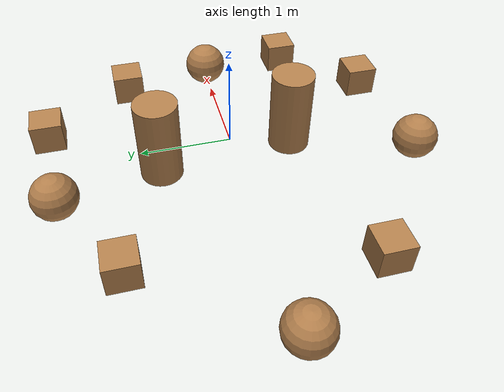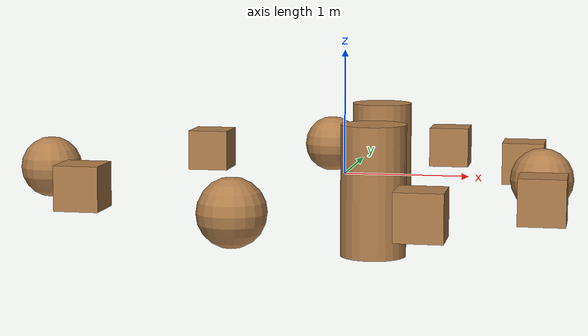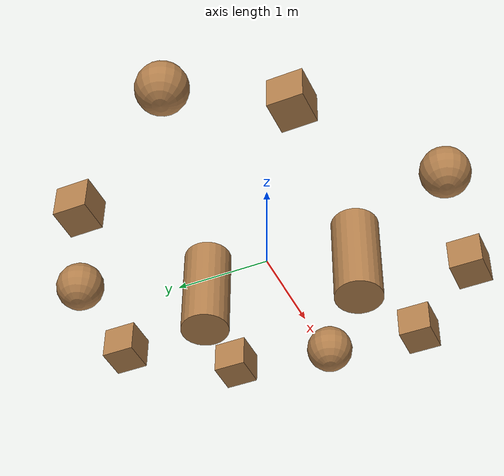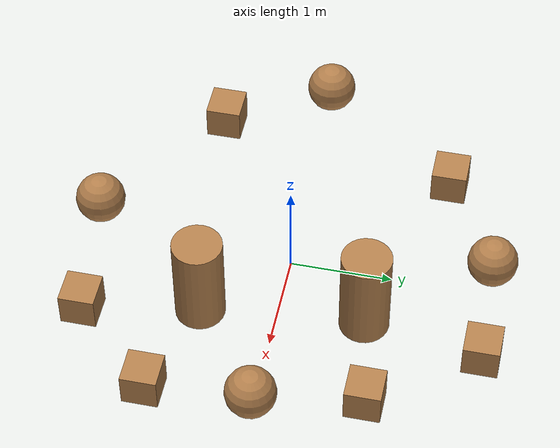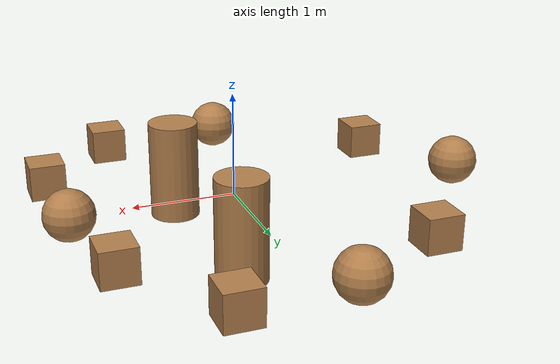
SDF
<?xml version='1.0'?>
<sdf version='1.7'>
  <model name='stage2_obs'>
    <link name='link_0'>
      <inertial>
        <mass>1</mass>
        <inertia>
          <ixx>0.145833</ixx>
          <ixy>0</ixy>
          <ixz>0</ixz>
          <iyy>0.145833</iyy>
          <iyz>0</iyz>
          <izz>0.125</izz>
        </inertia>
        <pose>0 0 0 0 -0 0</pose>
      </inertial>
      <pose>0.358291 -0.842463 0 0 -0 0</pose>
      <gravity>1</gravity>
      <self_collide>0</self_collide>
      <kinematic>0</kinematic>
      <enable_wind>0</enable_wind>
      <visual name='visual'>
        <pose>0 0 0 0 -0 0</pose>
        <geometry>
          <cylinder>
            <radius>0.25</radius>
            <length>1</length>
          </cylinder>
        </geometry>
        <material>
          <lighting>1</lighting>
          <script>
            <uri>file://media/materials/scripts/gazebo.material</uri>
            <name>Gazebo/Wood</name>
          </script>
          <shader type='pixel'>
            <normal_map>__default__</normal_map>
          </shader>
          <ambient>0.3 0.3 0.3 1</ambient>
          <diffuse>0.7 0.7 0.7 1</diffuse>
          <specular>0.01 0.01 0.01 1</specular>
          <emissive>0 0 0 1</emissive>
        </material>
        <transparency>0</transparency>
        <cast_shadows>1</cast_shadows>
      </visual>
      <collision name='collision'>
        <laser_retro>0</laser_retro>
        <max_contacts>10</max_contacts>
        <pose>0 0 0 0 -0 0</pose>
        <geometry>
          <cylinder>
            <radius>0.25</radius>
            <length>1</length>
          </cylinder>
        </geometry>
        <surface>
          <friction>
            <ode>
              <mu>1</mu>
              <mu2>1</mu2>
              <fdir1>0 0 0</fdir1>
              <slip1>0</slip1>
              <slip2>0</slip2>
            </ode>
            <torsional>
              <coefficient>1</coefficient>
              <patch_radius>0</patch_radius>
              <surface_radius>0</surface_radius>
              <use_patch_radius>1</use_patch_radius>
              <ode>
                <slip>0</slip>
              </ode>
            </torsional>
          </friction>
          <bounce>
            <restitution_coefficient>0</restitution_coefficient>
            <threshold>1e+06</threshold>
          </bounce>
          <contact>
            <collide_without_contact>0</collide_without_contact>
            <collide_without_contact_bitmask>1</collide_without_contact_bitmask>
            <collide_bitmask>1</collide_bitmask>
            <ode>
              <soft_cfm>0</soft_cfm>
              <soft_erp>0.2</soft_erp>
              <kp>1e+13</kp>
              <kd>1</kd>
              <max_vel>0.01</max_vel>
              <min_depth>0</min_depth>
            </ode>
            <bullet>
              <split_impulse>1</split_impulse>
              <split_impulse_penetration_threshold>-0.01</split_impulse_penetration_threshold>
              <soft_cfm>0</soft_cfm>
              <soft_erp>0.2</soft_erp>
              <kp>1e+13</kp>
              <kd>1</kd>
            </bullet>
          </contact>
        </surface>
      </collision>
    </link>
    <link name='link_0_clone_0'>
      <inertial>
        <mass>1</mass>
        <inertia>
          <ixx>0.145833</ixx>
          <ixy>0</ixy>
          <ixz>0</ixz>
          <iyy>0.145833</iyy>
          <iyz>0</iyz>
          <izz>0.125</izz>
        </inertia>
        <pose>0 0 0 0 -0 0</pose>
      </inertial>
      <pose>0.192563 0.776958 0 0 -0 0</pose>
      <gravity>1</gravity>
      <self_collide>0</self_collide>
      <kinematic>0</kinematic>
      <enable_wind>0</enable_wind>
      <visual name='visual'>
        <pose>0 0 0 0 -0 0</pose>
        <geometry>
          <cylinder>
            <radius>0.25</radius>
            <length>1</length>
          </cylinder>
        </geometry>
        <material>
          <lighting>1</lighting>
          <script>
            <uri>file://media/materials/scripts/gazebo.material</uri>
            <name>Gazebo/Wood</name>
          </script>
          <shader type='pixel'>
            <normal_map>__default__</normal_map>
          </shader>
          <ambient>0.3 0.3 0.3 1</ambient>
          <diffuse>0.7 0.7 0.7 1</diffuse>
          <specular>0.01 0.01 0.01 1</specular>
          <emissive>0 0 0 1</emissive>
        </material>
        <transparency>0</transparency>
        <cast_shadows>1</cast_shadows>
      </visual>
      <collision name='collision'>
        <laser_retro>0</laser_retro>
        <max_contacts>10</max_contacts>
        <pose>0 0 0 0 -0 0</pose>
        <geometry>
          <cylinder>
            <radius>0.25</radius>
            <length>1</length>
          </cylinder>
        </geometry>
        <surface>
          <friction>
            <ode>
              <mu>1</mu>
              <mu2>1</mu2>
              <fdir1>0 0 0</fdir1>
              <slip1>0</slip1>
              <slip2>0</slip2>
            </ode>
            <torsional>
              <coefficient>1</coefficient>
              <patch_radius>0</patch_radius>
              <surface_radius>0</surface_radius>
              <use_patch_radius>1</use_patch_radius>
              <ode>
                <slip>0</slip>
              </ode>
            </torsional>
          </friction>
          <bounce>
            <restitution_coefficient>0</restitution_coefficient>
            <threshold>1e+06</threshold>
          </bounce>
          <contact>
            <collide_without_contact>0</collide_without_contact>
            <collide_without_contact_bitmask>1</collide_without_contact_bitmask>
            <collide_bitmask>1</collide_bitmask>
            <ode>
              <soft_cfm>0</soft_cfm>
              <soft_erp>0.2</soft_erp>
              <kp>1e+13</kp>
              <kd>1</kd>
              <max_vel>0.01</max_vel>
              <min_depth>0</min_depth>
            </ode>
            <bullet>
              <split_impulse>1</split_impulse>
              <split_impulse_penetration_threshold>-0.01</split_impulse_penetration_threshold>
              <soft_cfm>0</soft_cfm>
              <soft_erp>0.2</soft_erp>
              <kp>1e+13</kp>
              <kd>1</kd>
            </bullet>
          </contact>
        </surface>
      </collision>
    </link>
    <link name='link_1_clone_clone'>
      <inertial>
        <mass>1</mass>
        <inertia>
          <ixx>0.166667</ixx>
          <ixy>0</ixy>
          <ixz>0</ixz>
          <iyy>0.166667</iyy>
          <iyz>0</iyz>
          <izz>0.166667</izz>
        </inertia>
        <pose>0 0 0 0 -0 0</pose>
      </inertial>
      <pose>0.841279 -1.88419 0 0 -0 0</pose>
      <gravity>1</gravity>
      <self_collide>0</self_collide>
      <kinematic>0</kinematic>
      <enable_wind>0</enable_wind>
      <visual name='visual'>
        <pose>0 0 0 0 -0 0</pose>
        <geometry>
          <box>
            <size>0.35 0.35 0.35</size>
          </box>
        </geometry>
        <material>
          <lighting>1</lighting>
          <script>
            <uri>file://media/materials/scripts/gazebo.material</uri>
            <name>Gazebo/Wood</name>
          </script>
          <shader type='pixel'>
            <normal_map>__default__</normal_map>
          </shader>
          <ambient>0.3 0.3 0.3 1</ambient>
          <diffuse>0.7 0.7 0.7 1</diffuse>
          <specular>0.01 0.01 0.01 1</specular>
          <emissive>0 0 0 1</emissive>
        </material>
        <transparency>0</transparency>
        <cast_shadows>1</cast_shadows>
      </visual>
      <collision name='collision'>
        <laser_retro>0</laser_retro>
        <max_contacts>10</max_contacts>
        <pose>0 0 0 0 -0 0</pose>
        <geometry>
          <box>
            <size>0.35 0.35 0.35</size>
          </box>
        </geometry>
        <surface>
          <friction>
            <ode>
              <mu>1</mu>
              <mu2>1</mu2>
              <fdir1>0 0 0</fdir1>
              <slip1>0</slip1>
              <slip2>0</slip2>
            </ode>
            <torsional>
              <coefficient>1</coefficient>
              <patch_radius>0</patch_radius>
              <surface_radius>0</surface_radius>
              <use_patch_radius>1</use_patch_radius>
              <ode>
                <slip>0</slip>
              </ode>
            </torsional>
          </friction>
          <bounce>
            <restitution_coefficient>0</restitution_coefficient>
            <threshold>1e+06</threshold>
          </bounce>
          <contact>
            <collide_without_contact>0</collide_without_contact>
            <collide_without_contact_bitmask>1</collide_without_contact_bitmask>
            <collide_bitmask>1</collide_bitmask>
            <ode>
              <soft_cfm>0</soft_cfm>
              <soft_erp>0.2</soft_erp>
              <kp>1e+13</kp>
              <kd>1</kd>
              <max_vel>0.01</max_vel>
              <min_depth>0</min_depth>
            </ode>
            <bullet>
              <split_impulse>1</split_impulse>
              <split_impulse_penetration_threshold>-0.01</split_impulse_penetration_threshold>
              <soft_cfm>0</soft_cfm>
              <soft_erp>0.2</soft_erp>
              <kp>1e+13</kp>
              <kd>1</kd>
            </bullet>
          </contact>
        </surface>
      </collision>
    </link>
    <link name='link_1_clone_clone_clone'>
      <inertial>
        <mass>1</mass>
        <inertia>
          <ixx>0.166667</ixx>
          <ixy>0</ixy>
          <ixz>0</ixz>
          <iyy>0.166667</iyy>
          <iyz>0</iyz>
          <izz>0.166667</izz>
        </inertia>
        <pose>0 0 0 0 -0 0</pose>
      </inertial>
      <pose>1.38108 0.990034 0 0 -0 0</pose>
      <gravity>1</gravity>
      <self_collide>0</self_collide>
      <kinematic>0</kinematic>
      <enable_wind>0</enable_wind>
      <visual name='visual'>
        <pose>0 0 0 0 -0 0</pose>
        <geometry>
          <box>
            <size>0.35 0.35 0.35</size>
          </box>
        </geometry>
        <material>
          <lighting>1</lighting>
          <script>
            <uri>file://media/materials/scripts/gazebo.material</uri>
            <name>Gazebo/Wood</name>
          </script>
          <shader type='pixel'>
            <normal_map>__default__</normal_map>
          </shader>
          <ambient>0.3 0.3 0.3 1</ambient>
          <diffuse>0.7 0.7 0.7 1</diffuse>
          <specular>0.01 0.01 0.01 1</specular>
          <emissive>0 0 0 1</emissive>
        </material>
        <transparency>0</transparency>
        <cast_shadows>1</cast_shadows>
      </visual>
      <collision name='collision'>
        <laser_retro>0</laser_retro>
        <max_contacts>10</max_contacts>
        <pose>0 0 0 0 -0 0</pose>
        <geometry>
          <box>
            <size>0.35 0.35 0.35</size>
          </box>
        </geometry>
        <surface>
          <friction>
            <ode>
              <mu>1</mu>
              <mu2>1</mu2>
              <fdir1>0 0 0</fdir1>
              <slip1>0</slip1>
              <slip2>0</slip2>
            </ode>
            <torsional>
              <coefficient>1</coefficient>
              <patch_radius>0</patch_radius>
              <surface_radius>0</surface_radius>
              <use_patch_radius>1</use_patch_radius>
              <ode>
                <slip>0</slip>
              </ode>
            </torsional>
          </friction>
          <bounce>
            <restitution_coefficient>0</restitution_coefficient>
            <threshold>1e+06</threshold>
          </bounce>
          <contact>
            <collide_without_contact>0</collide_without_contact>
            <collide_without_contact_bitmask>1</collide_without_contact_bitmask>
            <collide_bitmask>1</collide_bitmask>
            <ode>
              <soft_cfm>0</soft_cfm>
              <soft_erp>0.2</soft_erp>
              <kp>1e+13</kp>
              <kd>1</kd>
              <max_vel>0.01</max_vel>
              <min_depth>0</min_depth>
            </ode>
            <bullet>
              <split_impulse>1</split_impulse>
              <split_impulse_penetration_threshold>-0.01</split_impulse_penetration_threshold>
              <soft_cfm>0</soft_cfm>
              <soft_erp>0.2</soft_erp>
              <kp>1e+13</kp>
              <kd>1</kd>
            </bullet>
          </contact>
        </surface>
      </collision>
    </link>
    <link name='link_1_clone_clone_clone_0'>
      <inertial>
        <mass>1</mass>
        <inertia>
          <ixx>0.166667</ixx>
          <ixy>0</ixy>
          <ixz>0</ixz>
          <iyy>0.166667</iyy>
          <iyz>0</iyz>
          <izz>0.166667</izz>
        </inertia>
        <pose>0 0 0 0 -0 0</pose>
      </inertial>
      <pose>1.63204 -1.06501 0 0 -0 0</pose>
      <gravity>1</gravity>
      <self_collide>0</self_collide>
      <kinematic>0</kinematic>
      <enable_wind>0</enable_wind>
      <visual name='visual'>
        <pose>0 0 0 0 -0 0</pose>
        <geometry>
          <box>
            <size>0.35 0.35 0.35</size>
          </box>
        </geometry>
        <material>
          <lighting>1</lighting>
          <script>
            <uri>file://media/materials/scripts/gazebo.material</uri>
            <name>Gazebo/Wood</name>
          </script>
          <shader type='pixel'>
            <normal_map>__default__</normal_map>
          </shader>
          <ambient>0.3 0.3 0.3 1</ambient>
          <diffuse>0.7 0.7 0.7 1</diffuse>
          <specular>0.01 0.01 0.01 1</specular>
          <emissive>0 0 0 1</emissive>
        </material>
        <transparency>0</transparency>
        <cast_shadows>1</cast_shadows>
      </visual>
      <collision name='collision'>
        <laser_retro>0</laser_retro>
        <max_contacts>10</max_contacts>
        <pose>0 0 0 0 -0 0</pose>
        <geometry>
          <box>
            <size>0.35 0.35 0.35</size>
          </box>
        </geometry>
        <surface>
          <friction>
            <ode>
              <mu>1</mu>
              <mu2>1</mu2>
              <fdir1>0 0 0</fdir1>
              <slip1>0</slip1>
              <slip2>0</slip2>
            </ode>
            <torsional>
              <coefficient>1</coefficient>
              <patch_radius>0</patch_radius>
              <surface_radius>0</surface_radius>
              <use_patch_radius>1</use_patch_radius>
              <ode>
                <slip>0</slip>
              </ode>
            </torsional>
          </friction>
          <bounce>
            <restitution_coefficient>0</restitution_coefficient>
            <threshold>1e+06</threshold>
          </bounce>
          <contact>
            <collide_without_contact>0</collide_without_contact>
            <collide_without_contact_bitmask>1</collide_without_contact_bitmask>
            <collide_bitmask>1</collide_bitmask>
            <ode>
              <soft_cfm>0</soft_cfm>
              <soft_erp>0.2</soft_erp>
              <kp>1e+13</kp>
              <kd>1</kd>
              <max_vel>0.01</max_vel>
              <min_depth>0</min_depth>
            </ode>
            <bullet>
              <split_impulse>1</split_impulse>
              <split_impulse_penetration_threshold>-0.01</split_impulse_penetration_threshold>
              <soft_cfm>0</soft_cfm>
              <soft_erp>0.2</soft_erp>
              <kp>1e+13</kp>
              <kd>1</kd>
            </bullet>
          </contact>
        </surface>
      </collision>
    </link>
    <link name='link_1_clone_clone_clone_1'>
      <inertial>
        <mass>1</mass>
        <inertia>
          <ixx>0.166667</ixx>
          <ixy>0</ixy>
          <ixz>0</ixz>
          <iyy>0.166667</iyy>
          <iyz>0</iyz>
          <izz>0.166667</izz>
        </inertia>
        <pose>0 0 0 0 -0 0</pose>
      </inertial>
      <pose>0.656609 1.98442 0 0 -0 0</pose>
      <gravity>1</gravity>
      <self_collide>0</self_collide>
      <kinematic>0</kinematic>
      <enable_wind>0</enable_wind>
      <visual name='visual'>
        <pose>0 0 0 0 -0 0</pose>
        <geometry>
          <box>
            <size>0.35 0.35 0.35</size>
          </box>
        </geometry>
        <material>
          <lighting>1</lighting>
          <script>
            <uri>file://media/materials/scripts/gazebo.material</uri>
            <name>Gazebo/Wood</name>
          </script>
          <shader type='pixel'>
            <normal_map>__default__</normal_map>
          </shader>
          <ambient>0.3 0.3 0.3 1</ambient>
          <diffuse>0.7 0.7 0.7 1</diffuse>
          <specular>0.01 0.01 0.01 1</specular>
          <emissive>0 0 0 1</emissive>
        </material>
        <transparency>0</transparency>
        <cast_shadows>1</cast_shadows>
      </visual>
      <collision name='collision'>
        <laser_retro>0</laser_retro>
        <max_contacts>10</max_contacts>
        <pose>0 0 0 0 -0 0</pose>
        <geometry>
          <box>
            <size>0.35 0.35 0.35</size>
          </box>
        </geometry>
        <surface>
          <friction>
            <ode>
              <mu>1</mu>
              <mu2>1</mu2>
              <fdir1>0 0 0</fdir1>
              <slip1>0</slip1>
              <slip2>0</slip2>
            </ode>
            <torsional>
              <coefficient>1</coefficient>
              <patch_radius>0</patch_radius>
              <surface_radius>0</surface_radius>
              <use_patch_radius>1</use_patch_radius>
              <ode>
                <slip>0</slip>
              </ode>
            </torsional>
          </friction>
          <bounce>
            <restitution_coefficient>0</restitution_coefficient>
            <threshold>1e+06</threshold>
          </bounce>
          <contact>
            <collide_without_contact>0</collide_without_contact>
            <collide_without_contact_bitmask>1</collide_without_contact_bitmask>
            <collide_bitmask>1</collide_bitmask>
            <ode>
              <soft_cfm>0</soft_cfm>
              <soft_erp>0.2</soft_erp>
              <kp>1e+13</kp>
              <kd>1</kd>
              <max_vel>0.01</max_vel>
              <min_depth>0</min_depth>
            </ode>
            <bullet>
              <split_impulse>1</split_impulse>
              <split_impulse_penetration_threshold>-0.01</split_impulse_penetration_threshold>
              <soft_cfm>0</soft_cfm>
              <soft_erp>0.2</soft_erp>
              <kp>1e+13</kp>
              <kd>1</kd>
            </bullet>
          </contact>
        </surface>
      </collision>
    </link>
    <link name='link_1_clone_clone_clone_2'>
      <inertial>
        <mass>1</mass>
        <inertia>
          <ixx>0.166667</ixx>
          <ixy>0</ixy>
          <ixz>0</ixz>
          <iyy>0.166667</iyy>
          <iyz>0</iyz>
          <izz>0.166667</izz>
        </inertia>
        <pose>0 0 0 0 -0 0</pose>
      </inertial>
      <pose>-1.85776 -1.07448 0 0 -0 0</pose>
      <gravity>1</gravity>
      <self_collide>0</self_collide>
      <kinematic>0</kinematic>
      <enable_wind>0</enable_wind>
      <visual name='visual'>
        <pose>0 0 0 0 -0 0</pose>
        <geometry>
          <box>
            <size>0.35 0.35 0.35</size>
          </box>
        </geometry>
        <material>
          <lighting>1</lighting>
          <script>
            <uri>file://media/materials/scripts/gazebo.material</uri>
            <name>Gazebo/Wood</name>
          </script>
          <shader type='pixel'>
            <normal_map>__default__</normal_map>
          </shader>
          <ambient>0.3 0.3 0.3 1</ambient>
          <diffuse>0.7 0.7 0.7 1</diffuse>
          <specular>0.01 0.01 0.01 1</specular>
          <emissive>0 0 0 1</emissive>
        </material>
        <transparency>0</transparency>
        <cast_shadows>1</cast_shadows>
      </visual>
      <collision name='collision'>
        <laser_retro>0</laser_retro>
        <max_contacts>10</max_contacts>
        <pose>0 0 0 0 -0 0</pose>
        <geometry>
          <box>
            <size>0.35 0.35 0.35</size>
          </box>
        </geometry>
        <surface>
          <friction>
            <ode>
              <mu>1</mu>
              <mu2>1</mu2>
              <fdir1>0 0 0</fdir1>
              <slip1>0</slip1>
              <slip2>0</slip2>
            </ode>
            <torsional>
              <coefficient>1</coefficient>
              <patch_radius>0</patch_radius>
              <surface_radius>0</surface_radius>
              <use_patch_radius>1</use_patch_radius>
              <ode>
                <slip>0</slip>
              </ode>
            </torsional>
          </friction>
          <bounce>
            <restitution_coefficient>0</restitution_coefficient>
            <threshold>1e+06</threshold>
          </bounce>
          <contact>
            <collide_without_contact>0</collide_without_contact>
            <collide_without_contact_bitmask>1</collide_without_contact_bitmask>
            <collide_bitmask>1</collide_bitmask>
            <ode>
              <soft_cfm>0</soft_cfm>
              <soft_erp>0.2</soft_erp>
              <kp>1e+13</kp>
              <kd>1</kd>
              <max_vel>0.01</max_vel>
              <min_depth>0</min_depth>
            </ode>
            <bullet>
              <split_impulse>1</split_impulse>
              <split_impulse_penetration_threshold>-0.01</split_impulse_penetration_threshold>
              <soft_cfm>0</soft_cfm>
              <soft_erp>0.2</soft_erp>
              <kp>1e+13</kp>
              <kd>1</kd>
            </bullet>
          </contact>
        </surface>
      </collision>
    </link>
    <link name='link_1_clone_clone_clone_3'>
      <inertial>
        <mass>1</mass>
        <inertia>
          <ixx>0.166667</ixx>
          <ixy>0</ixy>
          <ixz>0</ixz>
          <iyy>0.166667</iyy>
          <iyz>0</iyz>
          <izz>0.166667</izz>
        </inertia>
        <pose>0 0 0 0 -0 0</pose>
      </inertial>
      <pose>-1.44106 1.35938 0 0 -0 0</pose>
      <gravity>1</gravity>
      <self_collide>0</self_collide>
      <kinematic>0</kinematic>
      <enable_wind>0</enable_wind>
      <visual name='visual'>
        <pose>0 0 0 0 -0 0</pose>
        <geometry>
          <box>
            <size>0.35 0.35 0.35</size>
          </box>
        </geometry>
        <material>
          <lighting>1</lighting>
          <script>
            <uri>file://media/materials/scripts/gazebo.material</uri>
            <name>Gazebo/Wood</name>
          </script>
          <shader type='pixel'>
            <normal_map>__default__</normal_map>
          </shader>
          <ambient>0.3 0.3 0.3 1</ambient>
          <diffuse>0.7 0.7 0.7 1</diffuse>
          <specular>0.01 0.01 0.01 1</specular>
          <emissive>0 0 0 1</emissive>
        </material>
        <transparency>0</transparency>
        <cast_shadows>1</cast_shadows>
      </visual>
      <collision name='collision'>
        <laser_retro>0</laser_retro>
        <max_contacts>10</max_contacts>
        <pose>0 0 0 0 -0 0</pose>
        <geometry>
          <box>
            <size>0.35 0.35 0.35</size>
          </box>
        </geometry>
        <surface>
          <friction>
            <ode>
              <mu>1</mu>
              <mu2>1</mu2>
              <fdir1>0 0 0</fdir1>
              <slip1>0</slip1>
              <slip2>0</slip2>
            </ode>
            <torsional>
              <coefficient>1</coefficient>
              <patch_radius>0</patch_radius>
              <surface_radius>0</surface_radius>
              <use_patch_radius>1</use_patch_radius>
              <ode>
                <slip>0</slip>
              </ode>
            </torsional>
          </friction>
          <bounce>
            <restitution_coefficient>0</restitution_coefficient>
            <threshold>1e+06</threshold>
          </bounce>
          <contact>
            <collide_without_contact>0</collide_without_contact>
            <collide_without_contact_bitmask>1</collide_without_contact_bitmask>
            <collide_bitmask>1</collide_bitmask>
            <ode>
              <soft_cfm>0</soft_cfm>
              <soft_erp>0.2</soft_erp>
              <kp>1e+13</kp>
              <kd>1</kd>
              <max_vel>0.01</max_vel>
              <min_depth>0</min_depth>
            </ode>
            <bullet>
              <split_impulse>1</split_impulse>
              <split_impulse_penetration_threshold>-0.01</split_impulse_penetration_threshold>
              <soft_cfm>0</soft_cfm>
              <soft_erp>0.2</soft_erp>
              <kp>1e+13</kp>
              <kd>1</kd>
            </bullet>
          </contact>
        </surface>
      </collision>
    </link>
    <link name='link_2'>
      <inertial>
        <mass>1</mass>
        <inertia>
          <ixx>0.1</ixx>
          <ixy>0</ixy>
          <ixz>0</ixz>
          <iyy>0.1</iyy>
          <iyz>0</iyz>
          <izz>0.1</izz>
        </inertia>
        <pose>0 0 0 0 -0 0</pose>
      </inertial>
      <pose>-2.45911 -0.070631 0 0 -0 0</pose>
      <gravity>1</gravity>
      <self_collide>0</self_collide>
      <kinematic>0</kinematic>
      <enable_wind>0</enable_wind>
      <visual name='visual'>
        <pose>0 0 0 0 -0 0</pose>
        <geometry>
          <sphere>
            <radius>0.25</radius>
          </sphere>
        </geometry>
        <material>
          <lighting>1</lighting>
          <script>
            <uri>file://media/materials/scripts/gazebo.material</uri>
            <name>Gazebo/Wood</name>
          </script>
          <shader type='pixel'>
            <normal_map>__default__</normal_map>
          </shader>
          <ambient>0.3 0.3 0.3 1</ambient>
          <diffuse>0.7 0.7 0.7 1</diffuse>
          <specular>0.01 0.01 0.01 1</specular>
          <emissive>0 0 0 1</emissive>
        </material>
        <transparency>0</transparency>
        <cast_shadows>1</cast_shadows>
      </visual>
      <collision name='collision'>
        <laser_retro>0</laser_retro>
        <max_contacts>10</max_contacts>
        <pose>0 0 0 0 -0 0</pose>
        <geometry>
          <sphere>
            <radius>0.25</radius>
          </sphere>
        </geometry>
        <surface>
          <friction>
            <ode>
              <mu>1</mu>
              <mu2>1</mu2>
              <fdir1>0 0 0</fdir1>
              <slip1>0</slip1>
              <slip2>0</slip2>
            </ode>
            <torsional>
              <coefficient>1</coefficient>
              <patch_radius>0</patch_radius>
              <surface_radius>0</surface_radius>
              <use_patch_radius>1</use_patch_radius>
              <ode>
                <slip>0</slip>
              </ode>
            </torsional>
          </friction>
          <bounce>
            <restitution_coefficient>0</restitution_coefficient>
            <threshold>1e+06</threshold>
          </bounce>
          <contact>
            <collide_without_contact>0</collide_without_contact>
            <collide_without_contact_bitmask>1</collide_without_contact_bitmask>
            <collide_bitmask>1</collide_bitmask>
            <ode>
              <soft_cfm>0</soft_cfm>
              <soft_erp>0.2</soft_erp>
              <kp>1e+13</kp>
              <kd>1</kd>
              <max_vel>0.01</max_vel>
              <min_depth>0</min_depth>
            </ode>
            <bullet>
              <split_impulse>1</split_impulse>
              <split_impulse_penetration_threshold>-0.01</split_impulse_penetration_threshold>
              <soft_cfm>0</soft_cfm>
              <soft_erp>0.2</soft_erp>
              <kp>1e+13</kp>
              <kd>1</kd>
            </bullet>
          </contact>
        </surface>
      </collision>
    </link>
    <link name='link_2_clone'>
      <inertial>
        <mass>1</mass>
        <inertia>
          <ixx>0.1</ixx>
          <ixy>0</ixy>
          <ixz>0</ixz>
          <iyy>0.1</iyy>
          <iyz>0</iyz>
          <izz>0.1</izz>
        </inertia>
        <pose>0 0 0 0 -0 0</pose>
      </inertial>
      <pose>-0.451416 -2.05466 0 0 -0 0</pose>
      <gravity>1</gravity>
      <self_collide>0</self_collide>
      <kinematic>0</kinematic>
      <enable_wind>0</enable_wind>
      <visual name='visual'>
        <pose>0 0 0 0 -0 0</pose>
        <geometry>
          <sphere>
            <radius>0.25</radius>
          </sphere>
        </geometry>
        <material>
          <lighting>1</lighting>
          <script>
            <uri>file://media/materials/scripts/gazebo.material</uri>
            <name>Gazebo/Wood</name>
          </script>
          <shader type='pixel'>
            <normal_map>__default__</normal_map>
          </shader>
          <ambient>0.3 0.3 0.3 1</ambient>
          <diffuse>0.7 0.7 0.7 1</diffuse>
          <specular>0.01 0.01 0.01 1</specular>
          <emissive>0 0 0 1</emissive>
        </material>
        <transparency>0</transparency>
        <cast_shadows>1</cast_shadows>
      </visual>
      <collision name='collision'>
        <laser_retro>0</laser_retro>
        <max_contacts>10</max_contacts>
        <pose>0 0 0 0 -0 0</pose>
        <geometry>
          <sphere>
            <radius>0.25</radius>
          </sphere>
        </geometry>
        <surface>
          <friction>
            <ode>
              <mu>1</mu>
              <mu2>1</mu2>
              <fdir1>0 0 0</fdir1>
              <slip1>0</slip1>
              <slip2>0</slip2>
            </ode>
            <torsional>
              <coefficient>1</coefficient>
              <patch_radius>0</patch_radius>
              <surface_radius>0</surface_radius>
              <use_patch_radius>1</use_patch_radius>
              <ode>
                <slip>0</slip>
              </ode>
            </torsional>
          </friction>
          <bounce>
            <restitution_coefficient>0</restitution_coefficient>
            <threshold>1e+06</threshold>
          </bounce>
          <contact>
            <collide_without_contact>0</collide_without_contact>
            <collide_without_contact_bitmask>1</collide_without_contact_bitmask>
            <collide_bitmask>1</collide_bitmask>
            <ode>
              <soft_cfm>0</soft_cfm>
              <soft_erp>0.2</soft_erp>
              <kp>1e+13</kp>
              <kd>1</kd>
              <max_vel>0.01</max_vel>
              <min_depth>0</min_depth>
            </ode>
            <bullet>
              <split_impulse>1</split_impulse>
              <split_impulse_penetration_threshold>-0.01</split_impulse_penetration_threshold>
              <soft_cfm>0</soft_cfm>
              <soft_erp>0.2</soft_erp>
              <kp>1e+13</kp>
              <kd>1</kd>
            </bullet>
          </contact>
        </surface>
      </collision>
    </link>
    <link name='link_2_clone_0'>
      <inertial>
        <mass>1</mass>
        <inertia>
          <ixx>0.1</ixx>
          <ixy>0</ixy>
          <ixz>0</ixz>
          <iyy>0.1</iyy>
          <iyz>0</iyz>
          <izz>0.1</izz>
        </inertia>
        <pose>0 0 0 0 -0 0</pose>
      </inertial>
      <pose>1.57996 -0.051691 0 0 -0 0</pose>
      <gravity>1</gravity>
      <self_collide>0</self_collide>
      <kinematic>0</kinematic>
      <enable_wind>0</enable_wind>
      <visual name='visual'>
        <pose>0 0 0 0 -0 0</pose>
        <geometry>
          <sphere>
            <radius>0.25</radius>
          </sphere>
        </geometry>
        <material>
          <lighting>1</lighting>
          <script>
            <uri>file://media/materials/scripts/gazebo.material</uri>
            <name>Gazebo/Wood</name>
          </script>
          <shader type='pixel'>
            <normal_map>__default__</normal_map>
          </shader>
          <ambient>0.3 0.3 0.3 1</ambient>
          <diffuse>0.7 0.7 0.7 1</diffuse>
          <specular>0.01 0.01 0.01 1</specular>
          <emissive>0 0 0 1</emissive>
        </material>
        <transparency>0</transparency>
        <cast_shadows>1</cast_shadows>
      </visual>
      <collision name='collision'>
        <laser_retro>0</laser_retro>
        <max_contacts>10</max_contacts>
        <pose>0 0 0 0 -0 0</pose>
        <geometry>
          <sphere>
            <radius>0.25</radius>
          </sphere>
        </geometry>
        <surface>
          <friction>
            <ode>
              <mu>1</mu>
              <mu2>1</mu2>
              <fdir1>0 0 0</fdir1>
              <slip1>0</slip1>
              <slip2>0</slip2>
            </ode>
            <torsional>
              <coefficient>1</coefficient>
              <patch_radius>0</patch_radius>
              <surface_radius>0</surface_radius>
              <use_patch_radius>1</use_patch_radius>
              <ode>
                <slip>0</slip>
              </ode>
            </torsional>
          </friction>
          <bounce>
            <restitution_coefficient>0</restitution_coefficient>
            <threshold>1e+06</threshold>
          </bounce>
          <contact>
            <collide_without_contact>0</collide_without_contact>
            <collide_without_contact_bitmask>1</collide_without_contact_bitmask>
            <collide_bitmask>1</collide_bitmask>
            <ode>
              <soft_cfm>0</soft_cfm>
              <soft_erp>0.2</soft_erp>
              <kp>1e+13</kp>
              <kd>1</kd>
              <max_vel>0.01</max_vel>
              <min_depth>0</min_depth>
            </ode>
            <bullet>
              <split_impulse>1</split_impulse>
              <split_impulse_penetration_threshold>-0.01</split_impulse_penetration_threshold>
              <soft_cfm>0</soft_cfm>
              <soft_erp>0.2</soft_erp>
              <kp>1e+13</kp>
              <kd>1</kd>
            </bullet>
          </contact>
        </surface>
      </collision>
    </link>
    <link name='link_2_clone_1'>
      <inertial>
        <mass>1</mass>
        <inertia>
          <ixx>0.1</ixx>
          <ixy>0</ixy>
          <ixz>0</ixz>
          <iyy>0.1</iyy>
          <iyz>0</iyz>
          <izz>0.1</izz>
        </inertia>
        <pose>0 0 0 0 -0 0</pose>
      </inertial>
      <pose>-0.432475 1.93233 0 0 -0 0</pose>
      <gravity>1</gravity>
      <self_collide>0</self_collide>
      <kinematic>0</kinematic>
      <enable_wind>0</enable_wind>
      <visual name='visual'>
        <pose>0 0 0 0 -0 0</pose>
        <geometry>
          <sphere>
            <radius>0.25</radius>
          </sphere>
        </geometry>
        <material>
          <lighting>1</lighting>
          <script>
            <uri>file://media/materials/scripts/gazebo.material</uri>
            <name>Gazebo/Wood</name>
          </script>
          <shader type='pixel'>
            <normal_map>__default__</normal_map>
          </shader>
          <ambient>0.3 0.3 0.3 1</ambient>
          <diffuse>0.7 0.7 0.7 1</diffuse>
          <specular>0.01 0.01 0.01 1</specular>
          <emissive>0 0 0 1</emissive>
        </material>
        <transparency>0</transparency>
        <cast_shadows>1</cast_shadows>
      </visual>
      <collision name='collision'>
        <laser_retro>0</laser_retro>
        <max_contacts>10</max_contacts>
        <pose>0 0 0 0 -0 0</pose>
        <geometry>
          <sphere>
            <radius>0.25</radius>
          </sphere>
        </geometry>
        <surface>
          <friction>
            <ode>
              <mu>1</mu>
              <mu2>1</mu2>
              <fdir1>0 0 0</fdir1>
              <slip1>0</slip1>
              <slip2>0</slip2>
            </ode>
            <torsional>
              <coefficient>1</coefficient>
              <patch_radius>0</patch_radius>
              <surface_radius>0</surface_radius>
              <use_patch_radius>1</use_patch_radius>
              <ode>
                <slip>0</slip>
              </ode>
            </torsional>
          </friction>
          <bounce>
            <restitution_coefficient>0</restitution_coefficient>
            <threshold>1e+06</threshold>
          </bounce>
          <contact>
            <collide_without_contact>0</collide_without_contact>
            <collide_without_contact_bitmask>1</collide_without_contact_bitmask>
            <collide_bitmask>1</collide_bitmask>
            <ode>
              <soft_cfm>0</soft_cfm>
              <soft_erp>0.2</soft_erp>
              <kp>1e+13</kp>
              <kd>1</kd>
              <max_vel>0.01</max_vel>
              <min_depth>0</min_depth>
            </ode>
            <bullet>
              <split_impulse>1</split_impulse>
              <split_impulse_penetration_threshold>-0.01</split_impulse_penetration_threshold>
              <soft_cfm>0</soft_cfm>
              <soft_erp>0.2</soft_erp>
              <kp>1e+13</kp>
              <kd>1</kd>
            </bullet>
          </contact>
        </surface>
      </collision>
    </link>
    <static>0</static>
    <allow_auto_disable>1</allow_auto_disable>
  </model>
</sdf>
